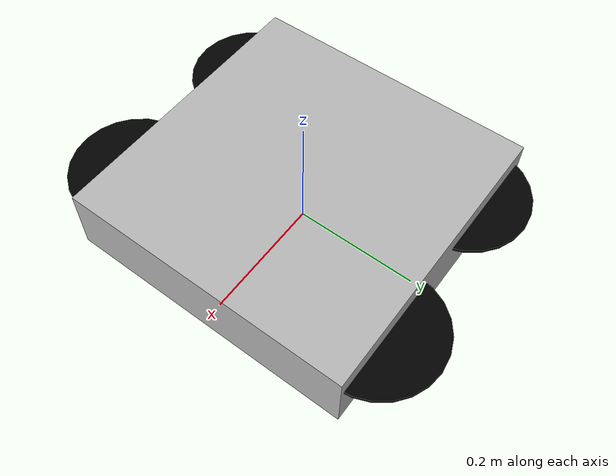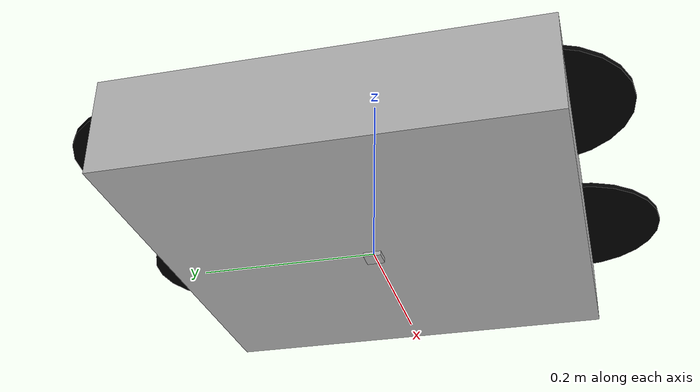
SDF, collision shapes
<sdf version="1.6">
    <model name="X3_2">
        <pose>0 0 0.053302 0 0 0</pose>
        <link name="X3_2/base_link">
            <pose frame="">0 0 0 0 -0 0</pose>
            <inertial>
                <pose frame="">0 0 0 0 -0 0</pose>
                <mass>1.5</mass>
                <inertia>
                    <ixx>0.0347563</ixx>
                    <ixy>0</ixy>
                    <ixz>0</ixz>
                    <iyy>0.07</iyy>
                    <iyz>0</iyz>
                    <izz>0.0977</izz>
                </inertia>
            </inertial>
            <collision name="X3_2/base_link_inertia_collision">
                <pose frame="">0 0 0 0 -0 0</pose>
                <geometry>
                    <box>
                        <size>0.47 0.47 0.11</size>
                    </box>
                </geometry>
            </collision>
            <visual name="X3_2/base_link_inertia_visual">
                <pose frame="">0 0 0 0 -0 0</pose>
                <geometry>
                    <mesh>
                        <scale>1 1 1</scale>
                        <uri>package://military_drones_description/models/X3_2/meshes/x3.dae</uri>
                    </mesh>
                </geometry>
            </visual>
        </link>
        <link name="X3_2/rotor_0">
            <pose frame="">0.13 -0.22 0.023 0 -0 0</pose>
            <inertial>
                <pose frame="">0 0 0 0 -0 0</pose>
                <mass>0.005</mass>
                <inertia>
                    <ixx>9.75e-07</ixx>
                    <ixy>0</ixy>
                    <ixz>0</ixz>
                    <iyy>4.17041e-05</iyy>
                    <iyz>0</iyz>
                    <izz>4.26041e-05</izz>
                </inertia>
            </inertial>
            <collision name="X3_2/rotor_0_collision">
                <pose frame="">0 0 0 0 -0 0</pose>
                <geometry>
                    <cylinder>
                        <length>0.005</length>
                        <radius>0.1</radius>
                    </cylinder>
                </geometry>
                <surface>
                    <contact>
                        <ode/>
                    </contact>
                    <friction>
                        <ode/>
                    </friction>
                </surface>
            </collision>
            <visual name="X3_2/rotor_0_visual">
                <pose frame="">0 0 0 0 -0 0</pose>
                <geometry>
                    <mesh>
                        <scale>0.1 0.1 0.1</scale>
                        <uri>package://military_drones_description/models/X3_2/meshes/propeller_ccw.dae</uri>
                    </mesh>
                </geometry>
                <material>
                    <ambient>0 0 0 1</ambient>
                    <diffuse>0 0 0 1</diffuse>
                    <specular>0.1 0.1 0.1 1</specular>
                    <emissive>0 0 0 1</emissive>
                </material>
            </visual>
            <gravity>1</gravity>
            <velocity_decay/>
        </link>
        <joint name="X3_2/rotor_0_joint" type="revolute">
            <child>X3_2/rotor_0</child>
            <parent>X3_2/base_link</parent>
            <axis>
                <xyz>0 0 1</xyz>
                <limit>
                    <lower>-1e+16</lower>
                    <upper>1e+16</upper>
                </limit>
                <dynamics>
                    <spring_reference>0</spring_reference>
                    <spring_stiffness>0</spring_stiffness>
                </dynamics>
                <use_parent_model_frame>1</use_parent_model_frame>
            </axis>
        </joint>
        <link name="X3_2/rotor_1">
            <pose frame="">-0.13 0.2 0.023 0 -0 0</pose>
            <inertial>
                <pose frame="">0 0 0 0 -0 0</pose>
                <mass>0.005</mass>
                <inertia>
                    <ixx>9.75e-07</ixx>
                    <ixy>0</ixy>
                    <ixz>0</ixz>
                    <iyy>4.17041e-05</iyy>
                    <iyz>0</iyz>
                    <izz>4.26041e-05</izz>
                </inertia>
            </inertial>
            <collision name="X3_2/rotor_1_collision">
                <pose frame="">0 0 0 0 -0 0</pose>
                <geometry>
                    <cylinder>
                        <length>0.005</length>
                        <radius>0.1</radius>
                    </cylinder>
                </geometry>
                <surface>
                    <contact>
                        <ode/>
                    </contact>
                    <friction>
                        <ode/>
                    </friction>
                </surface>
            </collision>
            <visual name="X3_2/rotor_1_visual">
                <pose frame="">0 0 0 0 -0 0</pose>
                <geometry>
                    <mesh>
                        <scale>0.1 0.1 0.1</scale>
                        <uri>package://military_drones_description/models/X3_2/meshes/propeller_ccw.dae</uri>
                    </mesh>
                </geometry>
                <material>
                    <ambient>0 0 0 1</ambient>
                    <diffuse>0 0 0 1</diffuse>
                    <specular>0.1 0.1 0.1 1</specular>
                    <emissive>0 0 0 1</emissive>
                </material>
            </visual>
            <gravity>1</gravity>
            <velocity_decay/>
        </link>
        <joint name="X3_2/rotor_1_joint" type="revolute">
            <child>X3_2/rotor_1</child>
            <parent>X3_2/base_link</parent>
            <axis>
                <xyz>0 0 1</xyz>
                <limit>
                    <lower>-1e+16</lower>
                    <upper>1e+16</upper>
                </limit>
                <dynamics>
                    <spring_reference>0</spring_reference>
                    <spring_stiffness>0</spring_stiffness>
                </dynamics>
                <use_parent_model_frame>1</use_parent_model_frame>
            </axis>
        </joint>
        <link name="X3_2/rotor_2">
            <pose frame="">0.13 0.22 0.023 0 -0 0</pose>
            <inertial>
                <pose frame="">0 0 0 0 -0 0</pose>
                <mass>0.005</mass>
                <inertia>
                    <ixx>9.75e-07</ixx>
                    <ixy>0</ixy>
                    <ixz>0</ixz>
                    <iyy>4.17041e-05</iyy>
                    <iyz>0</iyz>
                    <izz>4.26041e-05</izz>
                </inertia>
            </inertial>
            <collision name="X3_2/rotor_2_collision">
                <pose frame="">0 0 0 0 -0 0</pose>
                <geometry>
                    <cylinder>
                        <length>0.005</length>
                        <radius>0.1</radius>
                    </cylinder>
                </geometry>
                <surface>
                    <contact>
                        <ode/>
                    </contact>
                    <friction>
                        <ode/>
                    </friction>
                </surface>
            </collision>
            <visual name="X3_2/rotor_2_visual">
                <pose frame="">0 0 0 0 -0 0</pose>
                <geometry>
                    <mesh>
                        <scale>0.1 0.1 0.1</scale>
                        <uri>package://military_drones_description/models/X3_2/meshes/propeller_cw.dae</uri>
                    </mesh>
                </geometry>
                <material>
                    <ambient>0 0 0 1</ambient>
                    <diffuse>0 0 0 1</diffuse>
                    <specular>0.1 0.1 0.1 1</specular>
                    <emissive>0 0 0 1</emissive>
                </material>
            </visual>
            <gravity>1</gravity>
            <velocity_decay/>
        </link>
        <joint name="X3_2/rotor_2_joint" type="revolute">
            <child>X3_2/rotor_2</child>
            <parent>X3_2/base_link</parent>
            <axis>
                <xyz>0 0 1</xyz>
                <limit>
                    <lower>-1e+16</lower>
                    <upper>1e+16</upper>
                </limit>
                <dynamics>
                    <spring_reference>0</spring_reference>
                    <spring_stiffness>0</spring_stiffness>
                </dynamics>
                <use_parent_model_frame>1</use_parent_model_frame>
            </axis>
        </joint>
        <link name="X3_2/rotor_3">
            <pose frame="">-0.13 -0.2 0.023 0 -0 0</pose>
            <inertial>
                <pose frame="">0 0 0 0 -0 0</pose>
                <mass>0.005</mass>
                <inertia>
                    <ixx>9.75e-07</ixx>
                    <ixy>0</ixy>
                    <ixz>0</ixz>
                    <iyy>4.17041e-05</iyy>
                    <iyz>0</iyz>
                    <izz>4.26041e-05</izz>
                </inertia>
            </inertial>
            <collision name="X3_2/rotor_3_collision">
                <pose frame="">0 0 0 0 -0 0</pose>
                <geometry>
                    <cylinder>
                        <length>0.005</length>
                        <radius>0.1</radius>
                    </cylinder>
                </geometry>
                <surface>
                    <contact>
                        <ode/>
                    </contact>
                    <friction>
                        <ode/>
                    </friction>
                </surface>
            </collision>
            <visual name="X3_2/rotor_3_visual">
                <pose frame="">0 0 0 0 -0 0</pose>
                <geometry>
                    <mesh>
                        <scale>0.1 0.1 0.1</scale>
                        <uri>package://military_drones_description/models/X3_2/meshes/propeller_cw.dae</uri>
                    </mesh>
                </geometry>
                <material>
                    <ambient>0 0 0 1</ambient>
                    <diffuse>0 0 0 1</diffuse>
                    <specular>0.1 0.1 0.1 1</specular>
                    <emissive>0 0 0 1</emissive>
                </material>
            </visual>
            <gravity>1</gravity>
            <velocity_decay/>
        </link>
        <joint name="X3_2/rotor_3_joint" type="revolute">
            <child>X3_2/rotor_3</child>
            <parent>X3_2/base_link</parent>
            <axis>
                <xyz>0 0 1</xyz>
                <limit>
                    <lower>-1e+16</lower>
                    <upper>1e+16</upper>
                </limit>
                <dynamics>
                    <spring_reference>0</spring_reference>
                    <spring_stiffness>0</spring_stiffness>
                </dynamics>
                <use_parent_model_frame>1</use_parent_model_frame>
            </axis>
        </joint>
        <link name="X3_2/camera_link">
            <pose>0 0 -0.05 0 1.57079632679 3.14159</pose>
            <inertial>
                <mass>0.01</mass>
                <inertia>
                    <ixx>0.0001</ixx>
                    <ixy>0</ixy>
                    <ixz>0</ixz>
                    <iyy>0.0001</iyy>
                    <iyz>0</iyz>
                    <izz>0.0001</izz>
                </inertia>
            </inertial>
            <collision name="X3_2/camera_collision">
                <geometry>
                    <box>
                        <size>0.02 0.02 0.02</size>
                    </box>
                </geometry>
            </collision>
            <visual name="X3_2/camera_visual">
                <geometry>
                    <box>
                        <size>0.02 0.02 0.02</size>
                    </box>
                </geometry>
            </visual>
            <sensor name="camera_sensor" type="camera">
                <topic>X3_2/camera/image</topic>
                <update_rate>30</update_rate>
                <camera>
                    <horizontal_fov>1.3962634</horizontal_fov>
                    <image>
                        <width>1280</width>
                        <height>720</height>
                        <format>R8G8B8</format>
                    </image>
                    <clip>
                        <near>0.1</near>
                        <far>100</far>
                    </clip>
                </camera>
            </sensor>
        </link>
        <joint name="X3_2/camera_joint" type="fixed">
            <child>X3_2/camera_link</child>
            <parent>X3_2/base_link</parent>
            <pose>0 0 0 0 0 0</pose>
        </joint>
        <plugin
            filename="gz-sim-multicopter-motor-model-system"
            name="ignition::gazebo::systems::MulticopterMotorModel">
            <robotNamespace>X3_2</robotNamespace>
            <jointName>X3_2/rotor_0_joint</jointName>
            <linkName>X3_2/rotor_0</linkName>
            <turningDirection>ccw</turningDirection>
            <timeConstantUp>0.0125</timeConstantUp>
            <timeConstantDown>0.025</timeConstantDown>
            <maxRotVelocity>800.0</maxRotVelocity>
            <motorConstant>8.54858e-06</motorConstant>
            <momentConstant>0.016</momentConstant>
            <commandSubTopic>gazebo/command/motor_speed</commandSubTopic>
            <motorNumber>0</motorNumber>
            <rotorDragCoefficient>8.06428e-05</rotorDragCoefficient>
            <rollingMomentCoefficient>1e-06</rollingMomentCoefficient>
            <motorSpeedPubTopic>motor_speed/0</motorSpeedPubTopic>
            <rotorVelocitySlowdownSim>10</rotorVelocitySlowdownSim>
            <motorType>velocity</motorType>
        </plugin>
        <plugin
            filename="gz-sim-multicopter-motor-model-system"
            name="ignition::gazebo::systems::MulticopterMotorModel">
            <robotNamespace>X3_2</robotNamespace>
            <jointName>X3_2/rotor_1_joint</jointName>
            <linkName>X3_2/rotor_1</linkName>
            <turningDirection>ccw</turningDirection>
            <timeConstantUp>0.0125</timeConstantUp>
            <timeConstantDown>0.025</timeConstantDown>
            <maxRotVelocity>800.0</maxRotVelocity>
            <motorConstant>8.54858e-06</motorConstant>
            <momentConstant>0.016</momentConstant>
            <commandSubTopic>gazebo/command/motor_speed</commandSubTopic>
            <motorNumber>1</motorNumber>
            <rotorDragCoefficient>8.06428e-05</rotorDragCoefficient>
            <rollingMomentCoefficient>1e-06</rollingMomentCoefficient>
            <motorSpeedPubTopic>motor_speed/1</motorSpeedPubTopic>
            <rotorVelocitySlowdownSim>10</rotorVelocitySlowdownSim>
            <motorType>velocity</motorType>
        </plugin>
        <plugin
            filename="gz-sim-multicopter-motor-model-system"
            name="ignition::gazebo::systems::MulticopterMotorModel">
            <robotNamespace>X3_2</robotNamespace>
            <jointName>X3_2/rotor_2_joint</jointName>
            <linkName>X3_2/rotor_2</linkName>
            <turningDirection>cw</turningDirection>
            <timeConstantUp>0.0125</timeConstantUp>
            <timeConstantDown>0.025</timeConstantDown>
            <maxRotVelocity>800.0</maxRotVelocity>
            <motorConstant>8.54858e-06</motorConstant>
            <momentConstant>0.016</momentConstant>
            <commandSubTopic>gazebo/command/motor_speed</commandSubTopic>
            <motorNumber>2</motorNumber>
            <rotorDragCoefficient>8.06428e-05</rotorDragCoefficient>
            <rollingMomentCoefficient>1e-06</rollingMomentCoefficient>
            <motorSpeedPubTopic>motor_speed/2</motorSpeedPubTopic>
            <rotorVelocitySlowdownSim>10</rotorVelocitySlowdownSim>
            <motorType>velocity</motorType>
        </plugin>
        <plugin
            filename="gz-sim-multicopter-motor-model-system"
            name="ignition::gazebo::systems::MulticopterMotorModel">
            <robotNamespace>X3_2</robotNamespace>
            <jointName>X3_2/rotor_3_joint</jointName>
            <linkName>X3_2/rotor_3</linkName>
            <turningDirection>cw</turningDirection>
            <timeConstantUp>0.0125</timeConstantUp>
            <timeConstantDown>0.025</timeConstantDown>
            <maxRotVelocity>800.0</maxRotVelocity>
            <motorConstant>8.54858e-06</motorConstant>
            <momentConstant>0.016</momentConstant>
            <commandSubTopic>gazebo/command/motor_speed</commandSubTopic>
            <motorNumber>3</motorNumber>
            <rotorDragCoefficient>8.06428e-05</rotorDragCoefficient>
            <rollingMomentCoefficient>1e-06</rollingMomentCoefficient>
            <motorSpeedPubTopic>motor_speed/3</motorSpeedPubTopic>
            <rotorVelocitySlowdownSim>10</rotorVelocitySlowdownSim>
            <motorType>velocity</motorType>
        </plugin>
        <plugin
            filename="gz-sim-multicopter-control-system"
            name="ignition::gazebo::systems::MulticopterVelocityControl">
            <robotNamespace>X3_2</robotNamespace>
            <commandSubTopic>cmd_vel</commandSubTopic>
            <enableSubTopic>enable</enableSubTopic>
            <comLinkName>X3_2/base_link</comLinkName>
            <velocityGain>2.7 2.7 2.7</velocityGain>
            <attitudeGain>2 3 0.15</attitudeGain>
            <angularRateGain>0.4 0.52 0.18</angularRateGain>
            <maximumLinearAcceleration>2 2 2</maximumLinearAcceleration>
            <rotorConfiguration>
                <rotor>
                    <jointName>X3_2/rotor_0_joint</jointName>
                    <forceConstant>8.54858e-06</forceConstant>
                    <momentConstant>0.016</momentConstant>
                    <direction>1</direction>
                </rotor>
                <rotor>
                    <jointName>X3_2/rotor_1_joint</jointName>
                    <forceConstant>8.54858e-06</forceConstant>
                    <momentConstant>0.016</momentConstant>
                    <direction>1</direction>
                </rotor>
                <rotor>
                    <jointName>X3_2/rotor_2_joint</jointName>
                    <forceConstant>8.54858e-06</forceConstant>
                    <momentConstant>0.016</momentConstant>
                    <direction>-1</direction>
                </rotor>
                <rotor>
                    <jointName>X3_2/rotor_3_joint</jointName>
                    <forceConstant>8.54858e-06</forceConstant>
                    <momentConstant>0.016</momentConstant>
                    <direction>-1</direction>
                </rotor>
            </rotorConfiguration>
        </plugin>
    </model>
</sdf>
